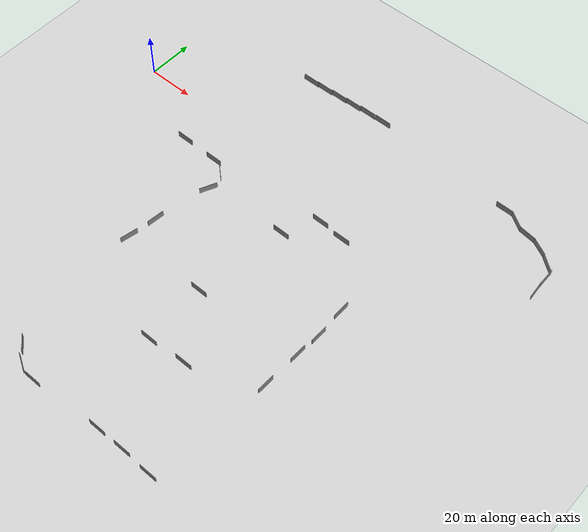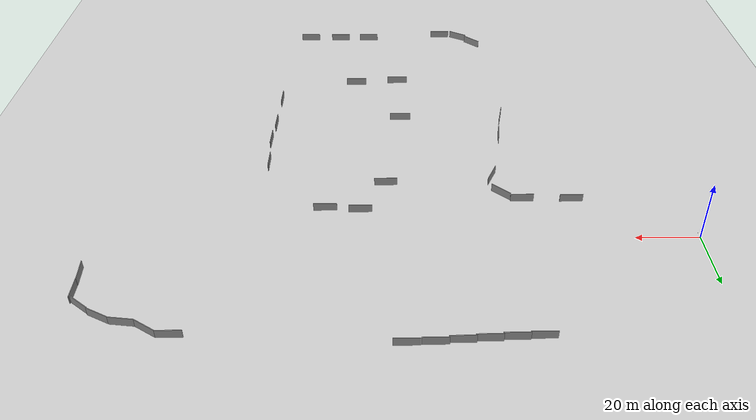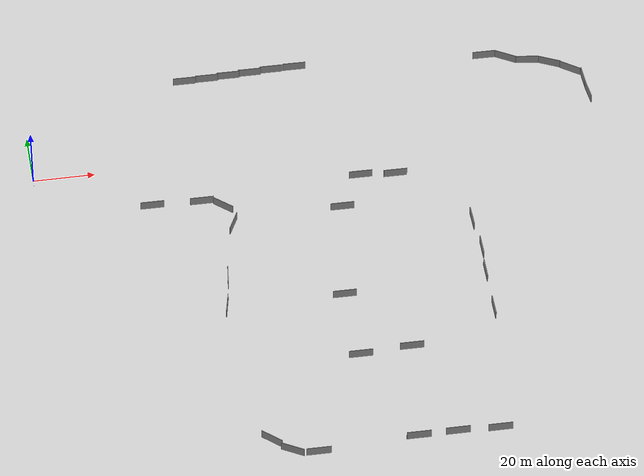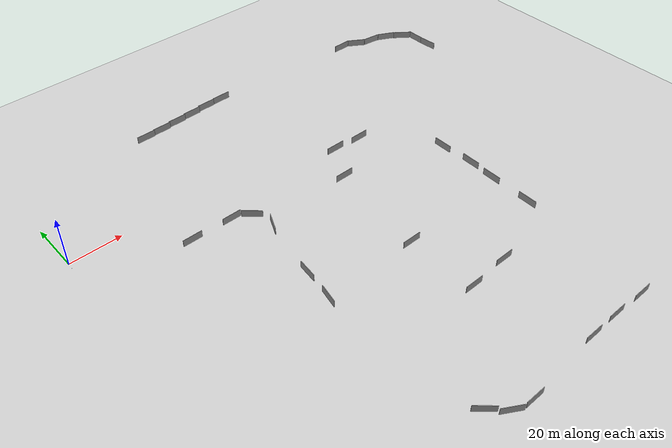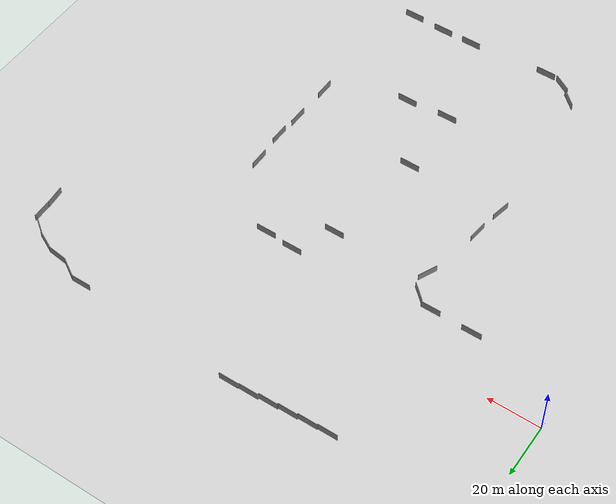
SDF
<sdf version="1.6">
 <world name="default">
  <model name="ground_plane">
   <static>1</static>
   <link name="link">
    <collision name="collision">
     <geometry><plane><normal>0 0 1</normal><size>100 100</size></plane></geometry>
     <surface><friction><ode><mu>100</mu><mu2>50</mu2></ode></friction></surface>
    </collision>
    <visual name="visual">
     <cast_shadows>0</cast_shadows>
     <geometry><plane><normal>0 0 1</normal><size>100 100</size></plane></geometry>
     <material>
      <script><uri>file://media/materials/scripts/gazebo.material</uri><name>Gazebo/Grey</name></script>
     </material>
    </visual>
   </link>
  </model>
  <gravity>0 0 -9.8</gravity>
  <magnetic_field>6e-06 2.3e-05 -4.2e-05</magnetic_field>
  <atmosphere type="adiabatic"/>
  <physics name="default_physics" default="0" type="ode">
   <ode>
    <solver>
     <type>quick</type>
     <iters>10</iters>
     <sor>1.3</sor>
     <use_dynamic_moi_rescaling>0</use_dynamic_moi_rescaling>
    </solver>
    <constraints>
     <cfm>0</cfm>
     <erp>0.2</erp>
     <contact_max_correcting_vel>100</contact_max_correcting_vel>
     <contact_surface_layer>0.001</contact_surface_layer>
    </constraints>
   </ode>
   <max_step_size>0.004</max_step_size>
   <real_time_factor>1</real_time_factor>
   <real_time_update_rate>250</real_time_update_rate>
  </physics>
  <scene><ambient>0.4 0.4 0.4 1</ambient><background>0.7 0.7 0.7 1</background><shadows>1</shadows></scene>
  <spherical_coordinates>
   <surface_model>EARTH_WGS84</surface_model>
   <latitude_deg>0</latitude_deg>
   <longitude_deg>0</longitude_deg>
   <elevation>0</elevation>
   <heading_deg>0</heading_deg>
  </spherical_coordinates>
  <light name="user_point_light_0" type="point">
   <pose>-0.115974 -22.0383 1 0 -0 0</pose>
   <diffuse>0.5 0.5 0.5 1</diffuse>
   <specular>0.1 0.1 0.1 1</specular>
   <attenuation>
    <range>20</range>
    <constant>0.5</constant>
    <linear>0.01</linear>
    <quadratic>0.001</quadratic>
   </attenuation>
   <cast_shadows>0</cast_shadows>
   <direction>0 0 -1</direction>
  </light>
  <light name="user_directional_light_0" type="directional">
   <pose>-8.65094 -16.4583 1 0 -0 0</pose>
   <diffuse>0.5 0.5 0.5 1</diffuse>
   <specular>0.1 0.1 0.1 1</specular>
   <direction>0.1 0.1 -0.9</direction>
   <attenuation>
    <range>20</range>
    <constant>0.5</constant>
    <linear>0.01</linear>
    <quadratic>0.001</quadratic>
   </attenuation>
  </light>
  <light name="user_point_light_1_clone" type="point">
   <pose>-8.68793 -5.84991 2.28827 0 -0 0</pose>
   <diffuse>0.5 0.5 0.5 1</diffuse>
   <specular>0.1 0.1 0.1 1</specular>
   <direction>0 0 -1</direction>
   <attenuation>
    <range>20</range>
    <constant>0.5</constant>
    <linear>0.01</linear>
    <quadratic>0.001</quadratic>
   </attenuation>
   <cast_shadows>0</cast_shadows>
  </light>
  <model name="lawn_plane">
   <static>1</static>
   <link name="link">
    <collision name="collision"><geometry><box><size>0.1392 0.1368 0.1</size></box></geometry></collision>
    <visual name="visual">
     <cast_shadows>0</cast_shadows>
     <geometry><box><size>0.1392 0.1368 0.1</size></box></geometry>
     <material>
      <script>
       <uri>model://lawn_plane/materials/scripts</uri>
       <uri>model://lawn_plane/materials/textures</uri>
       <name>vrc/lawn</name>
      </script>
     </material>
    </visual>
   </link>
   <pose>-0.03855 -2.26069 0 0 -0 0</pose>
  </model>
  <light name="user_directional_light_1" type="directional">
   <pose>4.18234 -12.2052 1 0 -0 0</pose>
   <diffuse>0.5 0.5 0.5 1</diffuse>
   <specular>0.1 0.1 0.1 1</specular>
   <direction>0.1 0.1 -0.9</direction>
   <attenuation>
    <range>20</range>
    <constant>0.5</constant>
    <linear>0.01</linear>
    <quadratic>0.001</quadratic>
   </attenuation>
  </light>
  <light name="user_directional_light_3" type="directional">
   <pose>-0.967171 -20.2792 1 0 -0 0</pose>
   <diffuse>0.5 0.5 0.5 1</diffuse>
   <specular>0.1 0.1 0.1 1</specular>
   <direction>0.1 0.1 -0.9</direction>
   <attenuation>
    <range>20</range>
    <constant>0.5</constant>
    <linear>0.01</linear>
    <quadratic>0.001</quadratic>
   </attenuation>
  </light>
  <light name="user_point_light_1" type="point">
   <pose>4.93028 1.64748 1 0 -0 0</pose>
   <diffuse>0.5 0.5 0.5 1</diffuse>
   <specular>0.1 0.1 0.1 1</specular>
   <attenuation>
    <range>20</range>
    <constant>0.5</constant>
    <linear>0.01</linear>
    <quadratic>0.001</quadratic>
   </attenuation>
   <cast_shadows>0</cast_shadows>
   <direction>0 0 -1</direction>
  </light>
  <model name="grey_wall">
   <static>1</static>
   <link name="link">
    <pose>0 0 1.4 0 -0 0</pose>
    <collision name="collision"><geometry><box><size>7.5 0.2 2.8</size></box></geometry></collision>
    <visual name="visual">
     <cast_shadows>0</cast_shadows>
     <geometry><box><size>7.5 0.2 2.8</size></box></geometry>
     <material>
      <script>
       <uri>model://grey_wall/materials/scripts</uri>
       <uri>model://grey_wall/materials/textures</uri>
       <name>vrc/grey_wall</name>
      </script>
     </material>
    </visual>
   </link>
   <pose>52.3381 -18.5348 0 0 -0 0</pose>
  </model>
  <model name="grey_wall_0">
   <static>1</static>
   <link name="link">
    <pose>0 0 1.4 0 -0 0</pose>
    <collision name="collision"><geometry><box><size>7.5 0.2 2.8</size></box></geometry></collision>
    <visual name="visual">
     <cast_shadows>0</cast_shadows>
     <geometry><box><size>7.5 0.2 2.8</size></box></geometry>
     <material>
      <script>
       <uri>model://grey_wall/materials/scripts</uri>
       <uri>model://grey_wall/materials/textures</uri>
       <name>vrc/grey_wall</name>
      </script>
     </material>
    </visual>
   </link>
   <pose>58.7532 -21.6133 0 0 0 -0.738404</pose>
  </model>
  <model name="grey_wall_1">
   <static>1</static>
   <link name="link">
    <pose>0 0 1.4 0 -0 0</pose>
    <collision name="collision"><geometry><box><size>7.5 0.2 2.8</size></box></geometry></collision>
    <visual name="visual">
     <cast_shadows>0</cast_shadows>
     <geometry><box><size>7.5 0.2 2.8</size></box></geometry>
     <material>
      <script>
       <uri>model://grey_wall/materials/scripts</uri>
       <uri>model://grey_wall/materials/textures</uri>
       <name>vrc/grey_wall</name>
      </script>
     </material>
    </visual>
   </link>
   <pose>60.8673 -30.52 0 0 0 -2.00118</pose>
  </model>
  <model name="grey_wall_2">
   <static>1</static>
   <link name="link">
    <pose>0 0 1.4 0 -0 0</pose>
    <collision name="collision"><geometry><box><size>7.5 0.2 2.8</size></box></geometry></collision>
    <visual name="visual">
     <cast_shadows>0</cast_shadows>
     <geometry><box><size>7.5 0.2 2.8</size></box></geometry>
     <material>
      <script>
       <uri>model://grey_wall/materials/scripts</uri>
       <uri>model://grey_wall/materials/textures</uri>
       <name>vrc/grey_wall</name>
      </script>
     </material>
    </visual>
   </link>
   <pose>55.8504 -54.7297 0 0 -0 1.46233</pose>
  </model>
  <model name="grey_wall_3">
   <static>1</static>
   <link name="link">
    <pose>0 0 1.4 0 -0 0</pose>
    <collision name="collision"><geometry><box><size>7.5 0.2 2.8</size></box></geometry></collision>
    <visual name="visual">
     <cast_shadows>0</cast_shadows>
     <geometry><box><size>7.5 0.2 2.8</size></box></geometry>
     <material>
      <script>
       <uri>model://grey_wall/materials/scripts</uri>
       <uri>model://grey_wall/materials/textures</uri>
       <name>vrc/grey_wall</name>
      </script>
     </material>
    </visual>
   </link>
   <pose>53.954 -67.0258 0 0 -0 1.37228</pose>
  </model>
  <model name="grey_wall_4">
   <static>1</static>
   <link name="link">
    <pose>0 0 1.4 0 -0 0</pose>
    <collision name="collision"><geometry><box><size>7.5 0.2 2.8</size></box></geometry></collision>
    <visual name="visual">
     <cast_shadows>0</cast_shadows>
     <geometry><box><size>7.5 0.2 2.8</size></box></geometry>
     <material>
      <script>
       <uri>model://grey_wall/materials/scripts</uri>
       <uri>model://grey_wall/materials/textures</uri>
       <name>vrc/grey_wall</name>
      </script>
     </material>
    </visual>
   </link>
   <pose>59.625 -125.633 0 0 0 -0.732888</pose>
  </model>
  <model name="grey_wall_6">
   <static>1</static>
   <link name="link">
    <pose>0 0 1.4 0 -0 0</pose>
    <collision name="collision"><geometry><box><size>7.5 0.2 2.8</size></box></geometry></collision>
    <visual name="visual">
     <cast_shadows>0</cast_shadows>
     <geometry><box><size>7.5 0.2 2.8</size></box></geometry>
     <material>
      <script>
       <uri>model://grey_wall/materials/scripts</uri>
       <uri>model://grey_wall/materials/textures</uri>
       <name>vrc/grey_wall</name>
      </script>
     </material>
    </visual>
   </link>
   <pose>72.906 -132.646 0 0 -0 0</pose>
  </model>
  <model name="grey_wall_7">
   <static>1</static>
   <link name="link">
    <pose>0 0 1.4 0 -0 0</pose>
    <collision name="collision"><geometry><box><size>7.5 0.2 2.8</size></box></geometry></collision>
    <visual name="visual">
     <cast_shadows>0</cast_shadows>
     <geometry><box><size>7.5 0.2 2.8</size></box></geometry>
     <material>
      <script>
       <uri>model://grey_wall/materials/scripts</uri>
       <uri>model://grey_wall/materials/textures</uri>
       <name>vrc/grey_wall</name>
      </script>
     </material>
    </visual>
   </link>
   <pose>91.8459 -93.8792 0 0 -0 0</pose>
  </model>
  <model name="grey_wall_8">
   <static>1</static>
   <link name="link">
    <pose>0 0 1.4 0 -0 0</pose>
    <collision name="collision"><geometry><box><size>7.5 0.2 2.8</size></box></geometry></collision>
    <visual name="visual">
     <cast_shadows>0</cast_shadows>
     <geometry><box><size>7.5 0.2 2.8</size></box></geometry>
     <material>
      <script>
       <uri>model://grey_wall/materials/scripts</uri>
       <uri>model://grey_wall/materials/textures</uri>
       <name>vrc/grey_wall</name>
      </script>
     </material>
    </visual>
   </link>
   <pose>90.9639 -67.1646 0 0 -0 0</pose>
  </model>
  <model name="grey_wall_9">
   <static>1</static>
   <link name="link">
    <pose>0 0 1.4 0 -0 0</pose>
    <collision name="collision"><geometry><box><size>7.5 0.2 2.8</size></box></geometry></collision>
    <visual name="visual">
     <cast_shadows>0</cast_shadows>
     <geometry><box><size>7.5 0.2 2.8</size></box></geometry>
     <material>
      <script>
       <uri>model://grey_wall/materials/scripts</uri>
       <uri>model://grey_wall/materials/textures</uri>
       <name>vrc/grey_wall</name>
      </script>
     </material>
    </visual>
   </link>
   <pose>96.3606 -27.6315 0 0 -0 0</pose>
  </model>
  <model name="grey_wall_10">
   <static>1</static>
   <link name="link">
    <pose>0 0 1.4 0 -0 0</pose>
    <collision name="collision"><geometry><box><size>7.5 0.2 2.8</size></box></geometry></collision>
    <visual name="visual">
     <cast_shadows>0</cast_shadows>
     <geometry><box><size>7.5 0.2 2.8</size></box></geometry>
     <material>
      <script>
       <uri>model://grey_wall/materials/scripts</uri>
       <uri>model://grey_wall/materials/textures</uri>
       <name>vrc/grey_wall</name>
      </script>
     </material>
    </visual>
   </link>
   <pose>104.417 -13.7255 0 0 -0 0</pose>
  </model>
  <model name="grey_wall_11">
   <static>1</static>
   <link name="link">
    <pose>0 0 1.4 0 -0 0</pose>
    <collision name="collision"><geometry><box><size>7.5 0.2 2.8</size></box></geometry></collision>
    <visual name="visual">
     <cast_shadows>0</cast_shadows>
     <geometry><box><size>7.5 0.2 2.8</size></box></geometry>
     <material>
      <script>
       <uri>model://grey_wall/materials/scripts</uri>
       <uri>model://grey_wall/materials/textures</uri>
       <name>vrc/grey_wall</name>
      </script>
     </material>
    </visual>
   </link>
   <pose>115.632 -14.6738 0 0 -0 0</pose>
  </model>
  <model name="grey_wall_12">
   <static>1</static>
   <link name="link">
    <pose>0 0 1.4 0 -0 0</pose>
    <collision name="collision"><geometry><box><size>7.5 0.2 2.8</size></box></geometry></collision>
    <visual name="visual">
     <cast_shadows>0</cast_shadows>
     <geometry><box><size>7.5 0.2 2.8</size></box></geometry>
     <material>
      <script>
       <uri>model://grey_wall/materials/scripts</uri>
       <uri>model://grey_wall/materials/textures</uri>
       <name>vrc/grey_wall</name>
      </script>
     </material>
    </visual>
   </link>
   <pose>136.27 -39.5057 0 0 0 -1.56957</pose>
  </model>
  <model name="grey_wall_13">
   <static>1</static>
   <link name="link">
    <pose>0 0 1.4 0 -0 0</pose>
    <collision name="collision"><geometry><box><size>7.5 0.2 2.8</size></box></geometry></collision>
    <visual name="visual">
     <cast_shadows>0</cast_shadows>
     <geometry><box><size>7.5 0.2 2.8</size></box></geometry>
     <material>
      <script>
       <uri>model://grey_wall/materials/scripts</uri>
       <uri>model://grey_wall/materials/textures</uri>
       <name>vrc/grey_wall</name>
      </script>
     </material>
    </visual>
   </link>
   <pose>136.977 -52.9128 0 0 0 -1.58758</pose>
  </model>
  <model name="grey_wall_14">
   <static>1</static>
   <link name="link">
    <pose>0 0 1.4 0 -0 0</pose>
    <collision name="collision"><geometry><box><size>7.5 0.2 2.8</size></box></geometry></collision>
    <visual name="visual">
     <cast_shadows>0</cast_shadows>
     <geometry><box><size>7.5 0.2 2.8</size></box></geometry>
     <material>
      <script>
       <uri>model://grey_wall/materials/scripts</uri>
       <uri>model://grey_wall/materials/textures</uri>
       <name>vrc/grey_wall</name>
      </script>
     </material>
    </visual>
   </link>
   <pose>136.268 -63.4885 0 0 -0 1.55423</pose>
  </model>
  <model name="grey_wall_15">
   <static>1</static>
   <link name="link">
    <pose>0 0 1.4 0 -0 0</pose>
    <collision name="collision"><geometry><box><size>7.5 0.2 2.8</size></box></geometry></collision>
    <visual name="visual">
     <cast_shadows>0</cast_shadows>
     <geometry><box><size>7.5 0.2 2.8</size></box></geometry>
     <material>
      <script>
       <uri>model://grey_wall/materials/scripts</uri>
       <uri>model://grey_wall/materials/textures</uri>
       <name>vrc/grey_wall</name>
      </script>
     </material>
    </visual>
   </link>
   <pose>135.882 -80.1072 0 0 -0 1.55685</pose>
  </model>
  <model name="grey_wall_16">
   <static>1</static>
   <link name="link">
    <pose>0 0 1.4 0 -0 0</pose>
    <collision name="collision"><geometry><box><size>7.5 0.2 2.8</size></box></geometry></collision>
    <visual name="visual">
     <cast_shadows>0</cast_shadows>
     <geometry><box><size>7.5 0.2 2.8</size></box></geometry>
     <material>
      <script>
       <uri>model://grey_wall/materials/scripts</uri>
       <uri>model://grey_wall/materials/textures</uri>
       <name>vrc/grey_wall</name>
      </script>
     </material>
    </visual>
   </link>
   <pose>107.924 -92.7158 0 0 -0 0</pose>
  </model>
  <model name="grey_wall_17">
   <static>1</static>
   <link name="link">
    <pose>0 0 1.4 0 -0 0</pose>
    <collision name="collision"><geometry><box><size>7.5 0.2 2.8</size></box></geometry></collision>
    <visual name="visual">
     <cast_shadows>0</cast_shadows>
     <geometry><box><size>7.5 0.2 2.8</size></box></geometry>
     <material>
      <script>
       <uri>model://grey_wall/materials/scripts</uri>
       <uri>model://grey_wall/materials/textures</uri>
       <name>vrc/grey_wall</name>
      </script>
     </material>
    </visual>
   </link>
   <pose>103.718 -130.503 0 0 -0 0</pose>
  </model>
  <model name="grey_wall_18">
   <static>1</static>
   <link name="link">
    <pose>0 0 1.4 0 -0 0</pose>
    <collision name="collision"><geometry><box><size>7.5 0.2 2.8</size></box></geometry></collision>
    <visual name="visual">
     <cast_shadows>0</cast_shadows>
     <geometry><box><size>7.5 0.2 2.8</size></box></geometry>
     <material>
      <script>
       <uri>model://grey_wall/materials/scripts</uri>
       <uri>model://grey_wall/materials/textures</uri>
       <name>vrc/grey_wall</name>
      </script>
     </material>
    </visual>
   </link>
   <pose>115.727 -130.371 0 0 -0 0</pose>
  </model>
  <model name="grey_wall_19">
   <static>1</static>
   <link name="link">
    <pose>0 0 1.4 0 -0 0</pose>
    <collision name="collision"><geometry><box><size>7.5 0.2 2.8</size></box></geometry></collision>
    <visual name="visual">
     <cast_shadows>0</cast_shadows>
     <geometry><box><size>7.5 0.2 2.8</size></box></geometry>
     <material>
      <script>
       <uri>model://grey_wall/materials/scripts</uri>
       <uri>model://grey_wall/materials/textures</uri>
       <name>vrc/grey_wall</name>
      </script>
     </material>
    </visual>
   </link>
   <pose>128.652 -130.845 0 0 -0 0</pose>
  </model>
  <model name="grey_wall_20">
   <static>1</static>
   <link name="link">
    <pose>0 0 1.4 0 -0 0</pose>
    <collision name="collision"><geometry><box><size>7.5 0.2 2.8</size></box></geometry></collision>
    <visual name="visual">
     <cast_shadows>0</cast_shadows>
     <geometry><box><size>7.5 0.2 2.8</size></box></geometry>
     <material>
      <script>
       <uri>model://grey_wall/materials/scripts</uri>
       <uri>model://grey_wall/materials/textures</uri>
       <name>vrc/grey_wall</name>
      </script>
     </material>
    </visual>
   </link>
   <pose>154.09 37.8627 0 0 -0 0</pose>
  </model>
  <model name="grey_wall_21">
   <static>1</static>
   <link name="link">
    <pose>0 0 1.4 0 -0 0</pose>
    <collision name="collision"><geometry><box><size>7.5 0.2 2.8</size></box></geometry></collision>
    <visual name="visual">
     <cast_shadows>0</cast_shadows>
     <geometry><box><size>7.5 0.2 2.8</size></box></geometry>
     <material>
      <script>
       <uri>model://grey_wall/materials/scripts</uri>
       <uri>model://grey_wall/materials/textures</uri>
       <name>vrc/grey_wall</name>
      </script>
     </material>
    </visual>
   </link>
   <pose>160.982 35.8433 0 0 0 -0.559914</pose>
  </model>
  <model name="grey_wall_22">
   <static>1</static>
   <link name="link">
    <pose>0 0 1.4 0 -0 0</pose>
    <collision name="collision"><geometry><box><size>7.5 0.2 2.8</size></box></geometry></collision>
    <visual name="visual">
     <cast_shadows>0</cast_shadows>
     <geometry><box><size>7.5 0.2 2.8</size></box></geometry>
     <material>
      <script>
       <uri>model://grey_wall/materials/scripts</uri>
       <uri>model://grey_wall/materials/textures</uri>
       <name>vrc/grey_wall</name>
      </script>
     </material>
    </visual>
   </link>
   <pose>167.875 33.3633 0 0 0 -0.12556</pose>
  </model>
  <model name="grey_wall_23">
   <static>1</static>
   <link name="link">
    <pose>0 0 1.4 0 -0 0</pose>
    <collision name="collision"><geometry><box><size>7.5 0.2 2.8</size></box></geometry></collision>
    <visual name="visual">
     <cast_shadows>0</cast_shadows>
     <geometry><box><size>7.5 0.2 2.8</size></box></geometry>
     <material>
      <script>
       <uri>model://grey_wall/materials/scripts</uri>
       <uri>model://grey_wall/materials/textures</uri>
       <name>vrc/grey_wall</name>
      </script>
     </material>
    </visual>
   </link>
   <pose>174.952 31.1163 0 0 0 -0.468055</pose>
  </model>
  <model name="grey_wall_24">
   <static>1</static>
   <link name="link">
    <pose>0 0 1.4 0 -0 0</pose>
    <collision name="collision"><geometry><box><size>7.5 0.2 2.8</size></box></geometry></collision>
    <visual name="visual">
     <cast_shadows>0</cast_shadows>
     <geometry><box><size>7.5 0.2 2.8</size></box></geometry>
     <material>
      <script>
       <uri>model://grey_wall/materials/scripts</uri>
       <uri>model://grey_wall/materials/textures</uri>
       <name>vrc/grey_wall</name>
      </script>
     </material>
    </visual>
   </link>
   <pose>181.117 27.0522 0 0 0 -0.649207</pose>
  </model>
  <model name="grey_wall_25">
   <static>1</static>
   <link name="link">
    <pose>0 0 1.4 0 -0 0</pose>
    <collision name="collision"><geometry><box><size>7.5 0.2 2.8</size></box></geometry></collision>
    <visual name="visual">
     <cast_shadows>0</cast_shadows>
     <geometry><box><size>7.5 0.2 2.8</size></box></geometry>
     <material>
      <script>
       <uri>model://grey_wall/materials/scripts</uri>
       <uri>model://grey_wall/materials/textures</uri>
       <name>vrc/grey_wall</name>
      </script>
     </material>
    </visual>
   </link>
   <pose>184.414 21.5122 0 0 0 -1.55152</pose>
  </model>
  <model name="grey_wall_26">
   <static>1</static>
   <link name="link">
    <pose>0 0 1.4 0 -0 0</pose>
    <collision name="collision"><geometry><box><size>7.5 0.2 2.8</size></box></geometry></collision>
    <visual name="visual">
     <cast_shadows>0</cast_shadows>
     <geometry><box><size>7.5 0.2 2.8</size></box></geometry>
     <material>
      <script>
       <uri>model://grey_wall/materials/scripts</uri>
       <uri>model://grey_wall/materials/textures</uri>
       <name>vrc/grey_wall</name>
      </script>
     </material>
    </visual>
   </link>
   <pose>184.727 14.5222 0 0 0 -1.48593</pose>
  </model>
  <model name="grey_wall_27">
   <static>1</static>
   <link name="link">
    <pose>0 0 1.4 0 -0 0</pose>
    <collision name="collision"><geometry><box><size>7.5 0.2 2.8</size></box></geometry></collision>
    <visual name="visual">
     <cast_shadows>0</cast_shadows>
     <geometry><box><size>7.5 0.2 2.8</size></box></geometry>
     <material>
      <script>
       <uri>model://grey_wall/materials/scripts</uri>
       <uri>model://grey_wall/materials/textures</uri>
       <name>vrc/grey_wall</name>
      </script>
     </material>
    </visual>
   </link>
   <pose>90.8152 41.3895 0 0 -0 0</pose>
  </model>
  <model name="grey_wall_28">
   <static>1</static>
   <link name="link">
    <pose>0 0 1.4 0 -0 0</pose>
    <collision name="collision"><geometry><box><size>7.5 0.2 2.8</size></box></geometry></collision>
    <visual name="visual">
     <cast_shadows>0</cast_shadows>
     <geometry><box><size>7.5 0.2 2.8</size></box></geometry>
     <material>
      <script>
       <uri>model://grey_wall/materials/scripts</uri>
       <uri>model://grey_wall/materials/textures</uri>
       <name>vrc/grey_wall</name>
      </script>
     </material>
    </visual>
   </link>
   <pose>83.1806 41.1631 0 0 -0 0</pose>
  </model>
  <model name="grey_wall_29">
   <static>1</static>
   <link name="link">
    <pose>0 0 1.4 0 -0 0</pose>
    <collision name="collision"><geometry><box><size>7.5 0.2 2.8</size></box></geometry></collision>
    <visual name="visual">
     <cast_shadows>0</cast_shadows>
     <geometry><box><size>7.5 0.2 2.8</size></box></geometry>
     <material>
      <script>
       <uri>model://grey_wall/materials/scripts</uri>
       <uri>model://grey_wall/materials/textures</uri>
       <name>vrc/grey_wall</name>
      </script>
     </material>
    </visual>
   </link>
   <pose>75.8883 40.6216 0 0 -0 0</pose>
  </model>
  <model name="grey_wall_30">
   <static>1</static>
   <link name="link">
    <pose>0 0 1.4 0 -0 0</pose>
    <collision name="collision"><geometry><box><size>7.5 0.2 2.8</size></box></geometry></collision>
    <visual name="visual">
     <cast_shadows>0</cast_shadows>
     <geometry><box><size>7.5 0.2 2.8</size></box></geometry>
     <material>
      <script>
       <uri>model://grey_wall/materials/scripts</uri>
       <uri>model://grey_wall/materials/textures</uri>
       <name>vrc/grey_wall</name>
      </script>
     </material>
    </visual>
   </link>
   <pose>68.7035 40.1855 0 0 -0 0</pose>
  </model>
  <model name="grey_wall_31">
   <static>1</static>
   <link name="link">
    <pose>0 0 1.4 0 -0 0</pose>
    <collision name="collision"><geometry><box><size>7.5 0.2 2.8</size></box></geometry></collision>
    <visual name="visual">
     <cast_shadows>0</cast_shadows>
     <geometry><box><size>7.5 0.2 2.8</size></box></geometry>
     <material>
      <script>
       <uri>model://grey_wall/materials/scripts</uri>
       <uri>model://grey_wall/materials/textures</uri>
       <name>vrc/grey_wall</name>
      </script>
     </material>
    </visual>
   </link>
   <pose>61.4112 39.7493 0 0 -0 0</pose>
  </model>
  <model name="grey_wall_32">
   <static>1</static>
   <link name="link">
    <pose>0 0 1.4 0 -0 0</pose>
    <collision name="collision"><geometry><box><size>7.5 0.2 2.8</size></box></geometry></collision>
    <visual name="visual">
     <cast_shadows>0</cast_shadows>
     <geometry><box><size>7.5 0.2 2.8</size></box></geometry>
     <material>
      <script>
       <uri>model://grey_wall/materials/scripts</uri>
       <uri>model://grey_wall/materials/textures</uri>
       <name>vrc/grey_wall</name>
      </script>
     </material>
    </visual>
   </link>
   <pose>54.1134 39.4548 0 0 -0 0</pose>
  </model>
  <model name="grey_wall_33">
   <static>1</static>
   <link name="link">
    <pose>0 0 1.4 0 -0 0</pose>
    <collision name="collision"><geometry><box><size>7.5 0.2 2.8</size></box></geometry></collision>
    <visual name="visual">
     <cast_shadows>0</cast_shadows>
     <geometry><box><size>7.5 0.2 2.8</size></box></geometry>
     <material>
      <script>
       <uri>model://grey_wall/materials/scripts</uri>
       <uri>model://grey_wall/materials/textures</uri>
       <name>vrc/grey_wall</name>
      </script>
     </material>
    </visual>
   </link>
   <pose>36.4145 -18.2006 0 0 -0 0</pose>
  </model>
  <model name="grey_wall_5">
   <static>1</static>
   <link name="link">
    <pose>0 0 1.4 0 -0 0</pose>
    <collision name="collision"><geometry><box><size>7.5 0.2 2.8</size></box></geometry></collision>
    <visual name="visual">
     <cast_shadows>0</cast_shadows>
     <geometry><box><size>7.5 0.2 2.8</size></box></geometry>
     <material>
      <script>
       <uri>model://grey_wall/materials/scripts</uri>
       <uri>model://grey_wall/materials/textures</uri>
       <name>vrc/grey_wall</name>
      </script>
     </material>
    </visual>
   </link>
   <pose>65.195 -130.86 0 0 0 -0.526392</pose>
  </model>
 </world>
</sdf>
